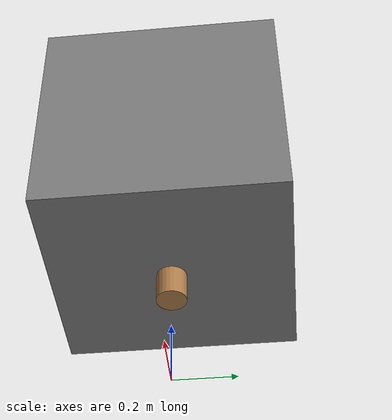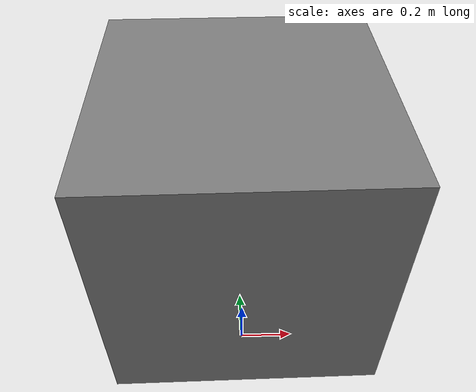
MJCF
<mujoco model="table_arena">
  <asset>
    <!-- ceramic table texture and material-->
    <texture file="../../textures/martin_novak_wood_table.png" type="cube" name="tex-table"/>
    <material name="table_texture" reflectance="0.0" shininess="0.0" specular="0.2" texrepeat="1 1" texture="tex-table" />
    <!-- steel legs -->
    <texture file="../../textures/martin_novak_wood_table.png" type="cube" name="tex-table-legs"/>
    <material name="table_legs" reflectance="0.8" shininess="0.8" texrepeat="1 1" texture="tex-table-legs" />

    <!-- added table texture and material for domain randomization -->
    <texture  name="textable" builtin="flat" height="512" width="512" rgb1="0.8 0.8 0.8" rgb2="0.8 0.8 0.8"/>
    <material name="table_mat" texture="textable" />

  </asset>
  <worldbody>
    <!-- Table body -->
    <body name="table" pos="0 0 0.4">
      <geom pos="0 0 0.4" size="0.4 0.4 0.4" type="box" group="1" name="table_collision" friction="1 0.005 0.0001"/>
      <geom pos="0 0 0.4" size="0.4 0.4 0.4" type="box" conaffinity="0" contype="0" group="0" name="table_visual" material="table_texture"/>
      <site pos="0 0 0.4" name="table_top" size="0.001 0.001 0.001" rgba="0 0 0 0"/>
      <!-- Legs (visual only) -->
      <geom pos="0 0 0" size="0.05 0.1" type="cylinder" conaffinity="0" contype="0" group="0" name="table_leg1_visual" material="table_legs"/>
      <geom pos="0 0 0" size="0.05 0.1" type="cylinder" conaffinity="0" contype="0" group="0" name="table_leg2_visual" material="table_legs"/>
      <geom pos="0 0 0" size="0.05 0.1" type="cylinder" conaffinity="0" contype="0" group="0" name="table_leg3_visual" material="table_legs"/>
      <geom pos="0 0 0" size="0.05 0.1" type="cylinder" conaffinity="0" contype="0" group="0" name="table_leg4_visual" material="table_legs"/>
    </body>
  </worldbody>
</mujoco>
